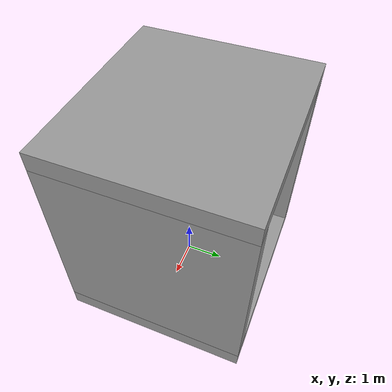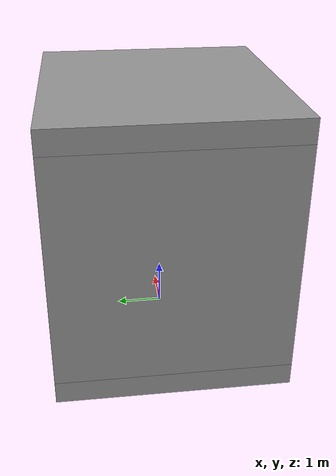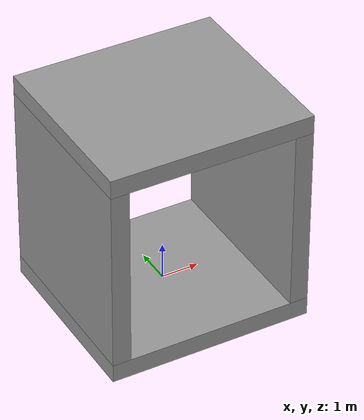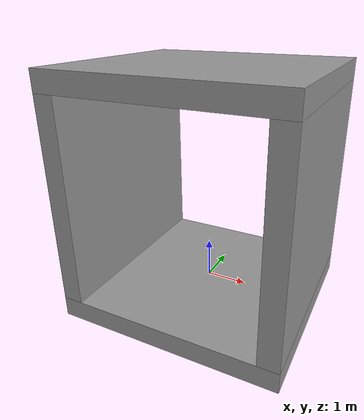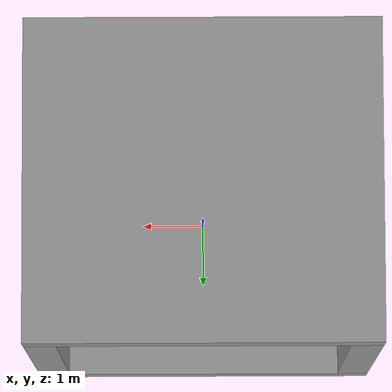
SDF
<?xml version="1.0" ?>
<sdf version="1.5">
  <world name="default">

    <physics type="ode">
      <ode>
        <solver>
          <type>quick</type>
        </solver>
        <constraints>
      </constraints>
      </ode>
    </physics>

    <!-- A global light source -->
    <include>
      <uri>model://sun</uri>
    </include>

    <!--ground plane-->
    <model name="obstacles">
    <pose>0 0 0 0 0 0</pose>
    <static>true</static>

    <link name="f_ground">
    <pose>0 0 -0.25 0 -1.5708 0</pose>
      <inertial>
        <mass>100.0</mass>
      </inertial>
      <surface>
        <friction>
           <ode>
            <mu>0.01</mu>
            <mu2>0.01</mu2>
          </ode>
        </friction>
      </surface>
      <collision name="collision">
        <geometry>
          <box>
            <size>0.5 5 5.5</size>
          </box>
        </geometry>
      </collision>
      <visual name="visual">
        <material>
          <script>
            <name>Gazebo/Grey</name>
          </script>
        </material>
        <geometry>
          <box>
            <size>0.5 5 5.5</size>
          </box>
        </geometry>
      </visual>
    </link>

    <link name="f_wall_1">
    <pose>2.5 0 2.5 0 0 3.14159</pose>
      <inertial>
        <mass>100.0</mass>
      </inertial>
      <surface>
        <friction>
           <ode>
            <mu>0.01</mu>
            <mu2>0.01</mu2>
          </ode>
        </friction>
      </surface>
      <collision name="collision">
        <geometry>
          <box>
            <size>0.5 5 5</size>
          </box>
        </geometry>
      </collision>
      <visual name="visual">
      <material>
          <script>
            <name>Gazebo/Grey</name>
          </script>
        </material>
        <geometry>
          <box>
            <size>0.5 5 5</size>
          </box>
        </geometry>
      </visual>
    </link>

    <link name="f_wall_2">
    <pose>-2.5 0 2.5 0 0 -3.14159</pose>
      <inertial>
        <mass>100.0</mass>
      </inertial>
      <surface>
        <friction>
           <ode>
            <mu>0.01</mu>
            <mu2>0.01</mu2>
          </ode>
        </friction>
      </surface>
      <collision name="collision">
        <geometry>
          <box>
            <size>0.5 5 5</size>
          </box>
        </geometry>
      </collision>
      <visual name="visual">
      <material>
          <script>
            <name>Gazebo/Grey</name>
          </script>
        </material>
        <geometry>
          <box>
            <size>0.5 5 5</size>
          </box>
        </geometry>
      </visual>
    </link>

    <link name="f_ceiling">
    <pose>0 0 5.25 0 1.5708 0</pose>
      <inertial>
        <mass>100.0</mass>
      </inertial>
      <surface>
        <friction>
           <ode>
            <mu>0.01</mu>
            <mu2>0.01</mu2>
          </ode>
        </friction>
      </surface>
      <collision name="collision">
        <geometry>
          <box>
            <size>0.5 5 5.5</size>
          </box>
        </geometry>
      </collision>
      <visual name="visual">
      <material>
          <script>
            <name>Gazebo/Grey</name>
          </script>
        </material>
        <geometry>
          <box>
            <size>0.5 5 5.5</size>
          </box>
        </geometry>
      </visual>
    </link>

  </model>

  </world>
</sdf>
